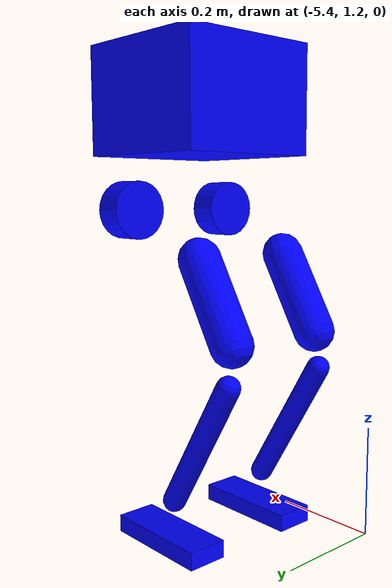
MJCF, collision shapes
<mujoco model="SF_TRON1">
  <compiler angle="radian"/>

  <default>
    <default class="tron_a1">
      <default class="visual">
        <geom contype="0" conaffinity="0" group="0" type="mesh" rgba="0.9 0.9 0.9 1.0"/>
      </default>
      <default class="collision">
        <geom group="3" rgba="0 0 1 0.5"/>
      </default>
      <joint armature="0.01" damping="0.01"/>
      <geom contype="1" conaffinity="1" condim="3" friction="0.6 0.005 0.0001" rgba="0.5 0.6 0.7 0.0" margin="0.001" group="3" />
    </default>
  </default>

  <asset>
    <mesh name="base_Link" file="assets/base_Link.STL" />
    <mesh name="abad_L_Link" file="assets/abad_L_Link.STL" />
    <mesh name="hip_L_Link" file="assets/hip_L_Link.STL" />
    <mesh name="knee_L_Link" file="assets/knee_L_Link.STL" />
    <mesh name="ankle_L_Link" file="assets/ankle_L_Link.STL" />
    <mesh name="abad_R_Link" file="assets/abad_R_Link.STL" />
    <mesh name="hip_R_Link" file="assets/hip_R_Link.STL" />
    <mesh name="knee_R_Link" file="assets/knee_R_Link.STL" />
    <mesh name="ankle_R_Link" file="assets/ankle_R_Link.STL" />
  </asset>

  <option timestep="0.001"/>

  <worldbody>
    <body name="base_Link" childclass="tron_a1" pos="-5.2 1.4 0.85">
      <inertial pos="0.0457123 0.000139854 -0.163809" quat="0.972578 -0.00615364 -0.232461 0.00398682" mass="9.595" diaginertia="0.154712 0.11093 0.0846371" />
      <joint type="free" limited="false" damping="0.0000" stiffness="0.0000" armature="0"/>
      <site name="imu"/>
      <geom class="visual" rgba="0.79216 0.81961 0.93333 1" mesh="base_Link" />
      <geom name="base_collision" size="0.135 0.13 0.095" pos="0.03 0 -0.072" type="box" class="collision"/>

      <body name="abad_L_Link" pos="0.05556 0.105 -0.2602">
        <inertial pos="-0.06977 0.04479 0.00057" quat="0.595024 0.579772 0.394141 0.393019" mass="1.469" diaginertia="0.00252289 0.00208104 0.00139163" />
        <joint name="abad_L_Joint" axis="1 0 0" limited="true" range="-0.38397 1.39626" />
        <geom class="visual" rgba="0.79216 0.81961 0.93333 1" mesh="abad_L_Link" />
        <geom name="abad_L_collision" size="0.05 0.025" pos="0.03 0 0" quat="0.500398 0.5 0.499602 0.5" type="cylinder" class="collision" />

        <body name="hip_L_Link" pos="-0.077 0.0205 0">
          <inertial pos="-0.02869 -0.0477 -0.03992" quat="0.853885 0.192797 0.226903 0.426877" mass="2.3" diaginertia="0.0233264 0.0230229 0.00277548" />
          <joint name="hip_L_Joint" axis="0 1 0" limited="true" range="-1.01229 1.39626" />
          <geom class="visual" rgba="1 1 1 1" mesh="hip_L_Link" />
          <geom name="hip_L_collision" size="0.035 0.075" pos="-0.1 -0.03 -0.14" quat="0.965093 0 0.261909 0" type="capsule" class="collision" />

          <body name="knee_L_Link" pos="-0.15 -0.0205 -0.25981">
            <inertial pos="0.11452 0.0013 -0.19367" quat="0.965543 0.00476557 -0.259713 -0.0159388" mass="1.22" diaginertia="0.0144103 0.0143581 0.00061582" />
            <joint name="knee_L_Joint" axis="0 -1 0" limited="true" range="-0.872665 1.36136" />
            <geom class="visual" rgba="0.79216 0.81961 0.93333 1" mesh="knee_L_Link" />
            <geom name="knee_L_collision" size="0.02 0.13" pos="0.078 0 -0.12" quat="0.962425 0 -0.271547 0" type="capsule" class="collision" />

            <body name="ankle_L_Link" pos="0.15 0 -0.25981">
              <inertial pos="0.01074 -0.00061 -0.03314" quat="0.013732 0.694322 0.0150212 0.719377" mass="0.62" diaginertia="0.0019759 0.00181179 0.000523633" />
              <joint name="ankle_L_Joint" axis="0 -1 0" limited="true" range="-1.15192 1.5708" frictionloss="0.01" />
              <geom class="visual" rgba="0.26667 0.26667 0.26667 1" mesh="ankle_L_Link" />
              <geom name="ankle_L_collision" size="0.1 0.035 0.015" pos="0.01 0 -0.04" type="box" class="collision"/>
              <site name="l_foot" pos="0.01 0 -0.04"/>
            </body>
          </body>
        </body>
      </body>
      <body name="abad_R_Link" pos="0.05556 -0.105 -0.2602">
        <inertial pos="-0.06977 -0.04479 0.00057" quat="0.393019 0.394141 0.579772 0.595024" mass="1.469" diaginertia="0.00252289 0.00208104 0.00139163" />
        <joint name="abad_R_Joint" axis="1 0 0" limited="true" range="-1.39626 0.38397" />
        <geom class="visual" rgba="0.79216 0.81961 0.93333 1" mesh="abad_R_Link" />
        <geom name="abad_R_collision" size="0.05 0.025" pos="0.03 0 0" quat="0.500398 0.5 0.499602 0.5" type="cylinder" class="collision"/>

        <body name="hip_R_Link" pos="-0.077 -0.0205 0">
          <inertial pos="-0.02869 0.0477 -0.03992" quat="0.426877 0.226903 0.192797 0.853885" mass="2.3" diaginertia="0.0233264 0.0230229 0.00277548" />
          <joint name="hip_R_Joint" axis="0 -1 0" limited="true" range="-1.39626 1.01229" />
          <geom class="visual" rgba="1 1 1 1" mesh="hip_R_Link" />
          <geom name="hip_R_collision" size="0.035 0.075" pos="-0.1 0.03 -0.14" quat="0.965093 0 0.261909 0" type="capsule" class="collision"/>

          <body name="knee_R_Link" pos="-0.15 0.0205 -0.25981">
            <inertial pos="0.11452 -0.0013 -0.19367" quat="0.965543 -0.00476557 -0.259713 0.0159388" mass="1.22" diaginertia="0.0144103 0.0143581 0.00061582" />
            <joint name="knee_R_Joint" axis="0 1 0" limited="true" range="-1.36136 0.872665" />
            <geom class="visual" rgba="0.79216 0.81961 0.93333 1" mesh="knee_R_Link" />
            <geom name="knee_R_collision" size="0.02 0.13" pos="0.078 0 -0.12" quat="0.962425 0 -0.271547 0" type="capsule" class="collision"/>

            <body name="ankle_R_Link" pos="0.15 0 -0.25981">
              <inertial pos="0.01074 0.00061 -0.03314" quat="-0.013732 0.694322 -0.0150212 0.719377" mass="0.62" diaginertia="0.0019759 0.00181179 0.000523633" />
              <joint name="ankle_R_Joint" axis="0 -1 0" limited="true" range="-1.15192 1.5708" frictionloss="0.01" />
              <geom class="visual" rgba="0.26667 0.26667 0.26667 1" mesh="ankle_R_Link" />
              <geom name="ankle_R_collision" size="0.1 0.035 0.015" pos="0.01 0 -0.04" type="box" class="collision"/>
              <site name="r_foot" pos="0.01 0 -0.04"/>
            </body>
          </body>
        </body>
      </body>
    </body>
  </worldbody>

  <actuator>
    <motor name="abad_L_Joint"   gear="1"  joint="abad_L_Joint"  ctrllimited='true' ctrlrange='-80 80'/>
    <motor name="hip_L_Joint"  gear="1"  joint="hip_L_Joint"   ctrllimited='true' ctrlrange='-80 80'/>
    <motor name="knee_L_Joint"   gear="1"  joint="knee_L_Joint"  ctrllimited='true' ctrlrange='-80 80'/>
    <motor name="ankle_L_Joint"  gear="1"  joint="ankle_L_Joint" ctrllimited='true' ctrlrange='-20 20'/>
    <motor name="abad_R_Joint"   gear="1"  joint="abad_R_Joint"  ctrllimited='true' ctrlrange='-80 80' />
    <motor name="hip_R_Joint"  gear="1"  joint="hip_R_Joint"   ctrllimited='true' ctrlrange='-80 80' />
    <motor name="knee_R_Joint"   gear="1"  joint="knee_R_Joint"  ctrllimited='true' ctrlrange='-80 80'/>
    <motor name="ankle_R_Joint"  gear="1"  joint="ankle_R_Joint" ctrllimited='true' ctrlrange='-20 20'/>
  </actuator>

  <sensor>
    <gyro site="imu" name="gyro"/>
    <velocimeter site="imu" name="local_linvel"/>
    <accelerometer site="imu" name="accelerometer"/>
    <framezaxis objtype="site" objname="imu" name="upvector"/>
    <framelinvel objtype="site" objname="imu" name="global_linvel"/>
    <frameangvel objtype="site" objname="imu" name="global_angvel"/>
    <framepos objtype="site" objname="imu" name="position"/>
    <framequat objtype="site" objname="imu" name="orientation"/>
    <framelinvel objtype="site" objname="l_foot" name="l_foot_global_linvel"/>
    <framelinvel objtype="site" objname="r_foot" name="r_foot_global_linvel"/>
    <framexaxis objtype="site" objname="l_foot" name="l_foot_upvector"/>
    <framexaxis objtype="site" objname="r_foot" name="r_foot_upvector"/>
    <framepos objtype="site" objname="l_foot" name="l_foot_pos"/>
    <framepos objtype="site" objname="r_foot" name="r_foot_pos"/>
  </sensor>

</mujoco>
